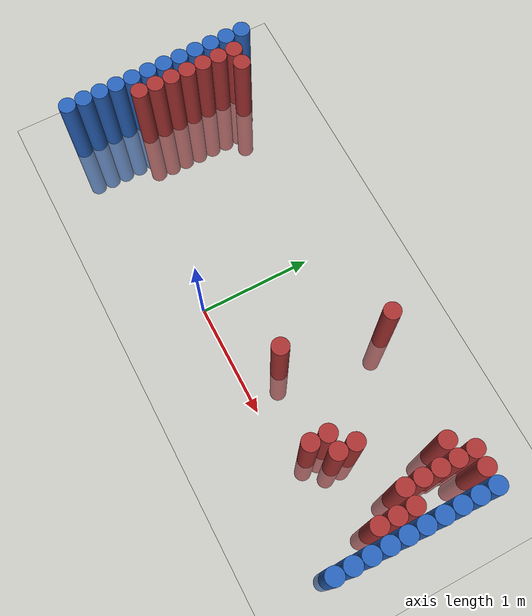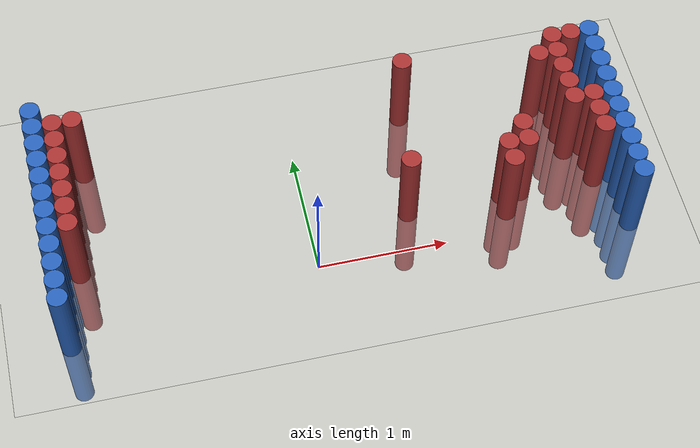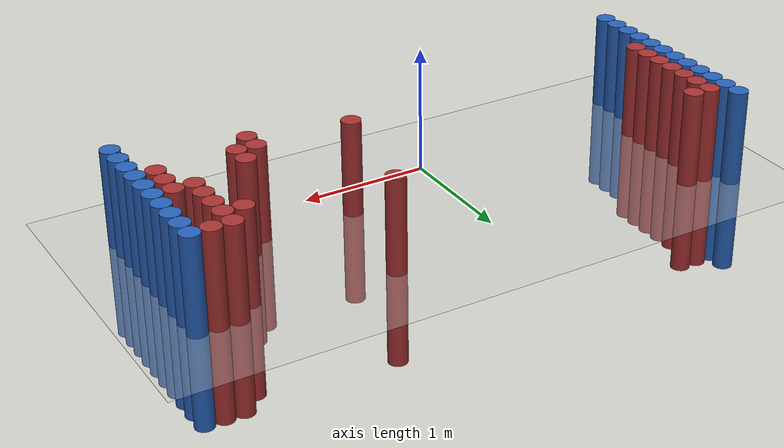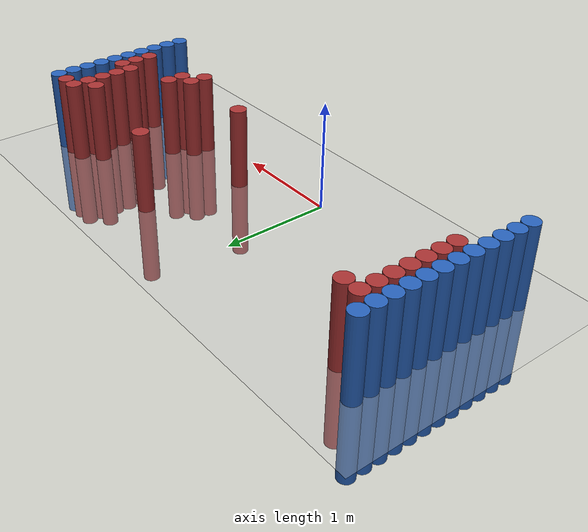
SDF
<sdf version="1.6">
 <world name="default">
  <model name="ground_plane">
   <static>1</static>
   <link name="link">
    <collision name="collision">
     <geometry><plane><normal>0 0 1</normal><size>100 100</size></plane></geometry>
     <surface><friction><ode><mu>100</mu><mu2>50</mu2></ode></friction></surface>
    </collision>
    <visual name="visual">
     <cast_shadows>0</cast_shadows>
     <geometry><plane><normal>0 0 1</normal><size>100 100</size></plane></geometry>
     <material>
      <script><uri>file://media/materials/scripts/gazebo.material</uri><name>Gazebo/Grey</name></script>
     </material>
    </visual>
   </link>
  </model>
  <model name="unit_cylinder_91">
   <static>1</static>
   <pose>-1.925000 -0.275000 0.000000 0.000000 0.000000 0.000000</pose>
   <link name="link">
    <inertial>
     <mass>1</mass>
     <inertia><ixx>0.145833</ixx><ixy>0</ixy><ixz>0</ixz><iyy>0.145833</iyy><iyz>0</iyz><izz>0.125</izz></inertia>
    </inertial>
    <collision name="collision">
     <geometry><cylinder><radius>0.075000</radius><length>1.5</length></cylinder></geometry>
    </collision>
    <visual name="visual">
     <geometry><cylinder><radius>0.075000</radius><length>1.5</length></cylinder></geometry>
     <material>
      <ambient>0.152000 0.379000 0.720000 1</ambient>
      <diffuse>0.152000 0.379000 0.720000 1</diffuse>
     </material>
     <material>
      <script><name>Gazebo/Grey</name><uri>file://media/materials/scripts/gazebo.material</uri></script>
     </material>
    </visual>
   </link>
  </model>
  <model name="unit_cylinder_92">
   <static>1</static>
   <pose>2.425000 -0.125000 0.000000 0.000000 0.000000 0.000000</pose>
   <link name="link">
    <inertial>
     <mass>1</mass>
     <inertia><ixx>0.145833</ixx><ixy>0</ixy><ixz>0</ixz><iyy>0.145833</iyy><iyz>0</iyz><izz>0.125</izz></inertia>
    </inertial>
    <collision name="collision">
     <geometry><cylinder><radius>0.075000</radius><length>1.5</length></cylinder></geometry>
    </collision>
    <visual name="visual">
     <geometry><cylinder><radius>0.075000</radius><length>1.5</length></cylinder></geometry>
     <material>
      <ambient>0.152000 0.379000 0.720000 1</ambient>
      <diffuse>0.152000 0.379000 0.720000 1</diffuse>
     </material>
     <material>
      <script><name>Gazebo/Grey</name><uri>file://media/materials/scripts/gazebo.material</uri></script>
     </material>
    </visual>
   </link>
  </model>
  <model name="unit_cylinder_93">
   <static>1</static>
   <pose>-1.925000 -0.125000 0.000000 0.000000 0.000000 0.000000</pose>
   <link name="link">
    <inertial>
     <mass>1</mass>
     <inertia><ixx>0.145833</ixx><ixy>0</ixy><ixz>0</ixz><iyy>0.145833</iyy><iyz>0</iyz><izz>0.125</izz></inertia>
    </inertial>
    <collision name="collision">
     <geometry><cylinder><radius>0.075000</radius><length>1.5</length></cylinder></geometry>
    </collision>
    <visual name="visual">
     <geometry><cylinder><radius>0.075000</radius><length>1.5</length></cylinder></geometry>
     <material>
      <ambient>0.152000 0.379000 0.720000 1</ambient>
      <diffuse>0.152000 0.379000 0.720000 1</diffuse>
     </material>
     <material>
      <script><name>Gazebo/Grey</name><uri>file://media/materials/scripts/gazebo.material</uri></script>
     </material>
    </visual>
   </link>
  </model>
  <model name="unit_cylinder_94">
   <static>1</static>
   <pose>2.425000 0.025000 0.000000 0.000000 0.000000 0.000000</pose>
   <link name="link">
    <inertial>
     <mass>1</mass>
     <inertia><ixx>0.145833</ixx><ixy>0</ixy><ixz>0</ixz><iyy>0.145833</iyy><iyz>0</iyz><izz>0.125</izz></inertia>
    </inertial>
    <collision name="collision">
     <geometry><cylinder><radius>0.075000</radius><length>1.5</length></cylinder></geometry>
    </collision>
    <visual name="visual">
     <geometry><cylinder><radius>0.075000</radius><length>1.5</length></cylinder></geometry>
     <material>
      <ambient>0.152000 0.379000 0.720000 1</ambient>
      <diffuse>0.152000 0.379000 0.720000 1</diffuse>
     </material>
     <material>
      <script><name>Gazebo/Grey</name><uri>file://media/materials/scripts/gazebo.material</uri></script>
     </material>
    </visual>
   </link>
  </model>
  <model name="unit_cylinder_95">
   <static>1</static>
   <pose>-1.925000 0.025000 0.000000 0.000000 0.000000 0.000000</pose>
   <link name="link">
    <inertial>
     <mass>1</mass>
     <inertia><ixx>0.145833</ixx><ixy>0</ixy><ixz>0</ixz><iyy>0.145833</iyy><iyz>0</iyz><izz>0.125</izz></inertia>
    </inertial>
    <collision name="collision">
     <geometry><cylinder><radius>0.075000</radius><length>1.5</length></cylinder></geometry>
    </collision>
    <visual name="visual">
     <geometry><cylinder><radius>0.075000</radius><length>1.5</length></cylinder></geometry>
     <material>
      <ambient>0.152000 0.379000 0.720000 1</ambient>
      <diffuse>0.152000 0.379000 0.720000 1</diffuse>
     </material>
     <material>
      <script><name>Gazebo/Grey</name><uri>file://media/materials/scripts/gazebo.material</uri></script>
     </material>
    </visual>
   </link>
  </model>
  <model name="unit_cylinder_96">
   <static>1</static>
   <pose>-1.925000 0.175000 0.000000 0.000000 0.000000 0.000000</pose>
   <link name="link">
    <inertial>
     <mass>1</mass>
     <inertia><ixx>0.145833</ixx><ixy>0</ixy><ixz>0</ixz><iyy>0.145833</iyy><iyz>0</iyz><izz>0.125</izz></inertia>
    </inertial>
    <collision name="collision">
     <geometry><cylinder><radius>0.075000</radius><length>1.5</length></cylinder></geometry>
    </collision>
    <visual name="visual">
     <geometry><cylinder><radius>0.075000</radius><length>1.5</length></cylinder></geometry>
     <material>
      <ambient>0.152000 0.379000 0.720000 1</ambient>
      <diffuse>0.152000 0.379000 0.720000 1</diffuse>
     </material>
     <material>
      <script><name>Gazebo/Grey</name><uri>file://media/materials/scripts/gazebo.material</uri></script>
     </material>
    </visual>
   </link>
  </model>
  <model name="unit_cylinder_97">
   <static>1</static>
   <pose>-1.925000 0.325000 0.000000 0.000000 0.000000 0.000000</pose>
   <link name="link">
    <inertial>
     <mass>1</mass>
     <inertia><ixx>0.145833</ixx><ixy>0</ixy><ixz>0</ixz><iyy>0.145833</iyy><iyz>0</iyz><izz>0.125</izz></inertia>
    </inertial>
    <collision name="collision">
     <geometry><cylinder><radius>0.075000</radius><length>1.5</length></cylinder></geometry>
    </collision>
    <visual name="visual">
     <geometry><cylinder><radius>0.075000</radius><length>1.5</length></cylinder></geometry>
     <material>
      <ambient>0.152000 0.379000 0.720000 1</ambient>
      <diffuse>0.152000 0.379000 0.720000 1</diffuse>
     </material>
     <material>
      <script><name>Gazebo/Grey</name><uri>file://media/materials/scripts/gazebo.material</uri></script>
     </material>
    </visual>
   </link>
  </model>
  <model name="unit_cylinder_98">
   <static>1</static>
   <pose>-1.925000 0.475000 0.000000 0.000000 0.000000 0.000000</pose>
   <link name="link">
    <inertial>
     <mass>1</mass>
     <inertia><ixx>0.145833</ixx><ixy>0</ixy><ixz>0</ixz><iyy>0.145833</iyy><iyz>0</iyz><izz>0.125</izz></inertia>
    </inertial>
    <collision name="collision">
     <geometry><cylinder><radius>0.075000</radius><length>1.5</length></cylinder></geometry>
    </collision>
    <visual name="visual">
     <geometry><cylinder><radius>0.075000</radius><length>1.5</length></cylinder></geometry>
     <material>
      <ambient>0.152000 0.379000 0.720000 1</ambient>
      <diffuse>0.152000 0.379000 0.720000 1</diffuse>
     </material>
     <material>
      <script><name>Gazebo/Grey</name><uri>file://media/materials/scripts/gazebo.material</uri></script>
     </material>
    </visual>
   </link>
  </model>
  <model name="unit_cylinder_99">
   <static>1</static>
   <pose>-1.925000 0.625000 0.000000 0.000000 0.000000 0.000000</pose>
   <link name="link">
    <inertial>
     <mass>1</mass>
     <inertia><ixx>0.145833</ixx><ixy>0</ixy><ixz>0</ixz><iyy>0.145833</iyy><iyz>0</iyz><izz>0.125</izz></inertia>
    </inertial>
    <collision name="collision">
     <geometry><cylinder><radius>0.075000</radius><length>1.5</length></cylinder></geometry>
    </collision>
    <visual name="visual">
     <geometry><cylinder><radius>0.075000</radius><length>1.5</length></cylinder></geometry>
     <material>
      <ambient>0.152000 0.379000 0.720000 1</ambient>
      <diffuse>0.152000 0.379000 0.720000 1</diffuse>
     </material>
     <material>
      <script><name>Gazebo/Grey</name><uri>file://media/materials/scripts/gazebo.material</uri></script>
     </material>
    </visual>
   </link>
  </model>
  <model name="unit_cylinder_100">
   <static>1</static>
   <pose>-1.925000 0.775000 0.000000 0.000000 0.000000 0.000000</pose>
   <link name="link">
    <inertial>
     <mass>1</mass>
     <inertia><ixx>0.145833</ixx><ixy>0</ixy><ixz>0</ixz><iyy>0.145833</iyy><iyz>0</iyz><izz>0.125</izz></inertia>
    </inertial>
    <collision name="collision">
     <geometry><cylinder><radius>0.075000</radius><length>1.5</length></cylinder></geometry>
    </collision>
    <visual name="visual">
     <geometry><cylinder><radius>0.075000</radius><length>1.5</length></cylinder></geometry>
     <material>
      <ambient>0.152000 0.379000 0.720000 1</ambient>
      <diffuse>0.152000 0.379000 0.720000 1</diffuse>
     </material>
     <material>
      <script><name>Gazebo/Grey</name><uri>file://media/materials/scripts/gazebo.material</uri></script>
     </material>
    </visual>
   </link>
  </model>
  <model name="unit_cylinder_101">
   <static>1</static>
   <pose>-1.925000 0.925000 0.000000 0.000000 0.000000 0.000000</pose>
   <link name="link">
    <inertial>
     <mass>1</mass>
     <inertia><ixx>0.145833</ixx><ixy>0</ixy><ixz>0</ixz><iyy>0.145833</iyy><iyz>0</iyz><izz>0.125</izz></inertia>
    </inertial>
    <collision name="collision">
     <geometry><cylinder><radius>0.075000</radius><length>1.5</length></cylinder></geometry>
    </collision>
    <visual name="visual">
     <geometry><cylinder><radius>0.075000</radius><length>1.5</length></cylinder></geometry>
     <material>
      <ambient>0.152000 0.379000 0.720000 1</ambient>
      <diffuse>0.152000 0.379000 0.720000 1</diffuse>
     </material>
     <material>
      <script><name>Gazebo/Grey</name><uri>file://media/materials/scripts/gazebo.material</uri></script>
     </material>
    </visual>
   </link>
  </model>
  <model name="unit_cylinder_102">
   <static>1</static>
   <pose>-1.925000 1.075000 0.000000 0.000000 0.000000 0.000000</pose>
   <link name="link">
    <inertial>
     <mass>1</mass>
     <inertia><ixx>0.145833</ixx><ixy>0</ixy><ixz>0</ixz><iyy>0.145833</iyy><iyz>0</iyz><izz>0.125</izz></inertia>
    </inertial>
    <collision name="collision">
     <geometry><cylinder><radius>0.075000</radius><length>1.5</length></cylinder></geometry>
    </collision>
    <visual name="visual">
     <geometry><cylinder><radius>0.075000</radius><length>1.5</length></cylinder></geometry>
     <material>
      <ambient>0.152000 0.379000 0.720000 1</ambient>
      <diffuse>0.152000 0.379000 0.720000 1</diffuse>
     </material>
     <material>
      <script><name>Gazebo/Grey</name><uri>file://media/materials/scripts/gazebo.material</uri></script>
     </material>
    </visual>
   </link>
  </model>
  <model name="unit_cylinder_103">
   <static>1</static>
   <pose>-1.925000 1.225000 0.000000 0.000000 0.000000 0.000000</pose>
   <link name="link">
    <inertial>
     <mass>1</mass>
     <inertia><ixx>0.145833</ixx><ixy>0</ixy><ixz>0</ixz><iyy>0.145833</iyy><iyz>0</iyz><izz>0.125</izz></inertia>
    </inertial>
    <collision name="collision">
     <geometry><cylinder><radius>0.075000</radius><length>1.5</length></cylinder></geometry>
    </collision>
    <visual name="visual">
     <geometry><cylinder><radius>0.075000</radius><length>1.5</length></cylinder></geometry>
     <material>
      <ambient>0.152000 0.379000 0.720000 1</ambient>
      <diffuse>0.152000 0.379000 0.720000 1</diffuse>
     </material>
     <material>
      <script><name>Gazebo/Grey</name><uri>file://media/materials/scripts/gazebo.material</uri></script>
     </material>
    </visual>
   </link>
  </model>
  <model name="unit_cylinder_104">
   <static>1</static>
   <pose>-1.925000 1.375000 0.000000 0.000000 0.000000 0.000000</pose>
   <link name="link">
    <inertial>
     <mass>1</mass>
     <inertia><ixx>0.145833</ixx><ixy>0</ixy><ixz>0</ixz><iyy>0.145833</iyy><iyz>0</iyz><izz>0.125</izz></inertia>
    </inertial>
    <collision name="collision">
     <geometry><cylinder><radius>0.075000</radius><length>1.5</length></cylinder></geometry>
    </collision>
    <visual name="visual">
     <geometry><cylinder><radius>0.075000</radius><length>1.5</length></cylinder></geometry>
     <material>
      <ambient>0.152000 0.379000 0.720000 1</ambient>
      <diffuse>0.152000 0.379000 0.720000 1</diffuse>
     </material>
     <material>
      <script><name>Gazebo/Grey</name><uri>file://media/materials/scripts/gazebo.material</uri></script>
     </material>
    </visual>
   </link>
  </model>
  <model name="unit_cylinder_126">
   <static>1</static>
   <pose>-1.775000 0.325000 0.000000 0.000000 0.000000 0.000000</pose>
   <link name="link">
    <inertial>
     <mass>1</mass>
     <inertia><ixx>0.145833</ixx><ixy>0</ixy><ixz>0</ixz><iyy>0.145833</iyy><iyz>0</iyz><izz>0.125</izz></inertia>
    </inertial>
    <collision name="collision">
     <geometry><cylinder><radius>0.075000</radius><length>1.5</length></cylinder></geometry>
    </collision>
    <visual name="visual">
     <geometry><cylinder><radius>0.075000</radius><length>1.5</length></cylinder></geometry>
     <material>
      <ambient>0.648000 0.192000 0.192000 1</ambient>
      <diffuse>0.648000 0.192000 0.192000 1</diffuse>
     </material>
     <material>
      <script><name>Gazebo/Grey</name><uri>file://media/materials/scripts/gazebo.material</uri></script>
     </material>
    </visual>
   </link>
  </model>
  <model name="unit_cylinder_127">
   <static>1</static>
   <pose>-1.775000 0.475000 0.000000 0.000000 0.000000 0.000000</pose>
   <link name="link">
    <inertial>
     <mass>1</mass>
     <inertia><ixx>0.145833</ixx><ixy>0</ixy><ixz>0</ixz><iyy>0.145833</iyy><iyz>0</iyz><izz>0.125</izz></inertia>
    </inertial>
    <collision name="collision">
     <geometry><cylinder><radius>0.075000</radius><length>1.5</length></cylinder></geometry>
    </collision>
    <visual name="visual">
     <geometry><cylinder><radius>0.075000</radius><length>1.5</length></cylinder></geometry>
     <material>
      <ambient>0.648000 0.192000 0.192000 1</ambient>
      <diffuse>0.648000 0.192000 0.192000 1</diffuse>
     </material>
     <material>
      <script><name>Gazebo/Grey</name><uri>file://media/materials/scripts/gazebo.material</uri></script>
     </material>
    </visual>
   </link>
  </model>
  <model name="unit_cylinder_128">
   <static>1</static>
   <pose>-1.775000 0.625000 0.000000 0.000000 0.000000 0.000000</pose>
   <link name="link">
    <inertial>
     <mass>1</mass>
     <inertia><ixx>0.145833</ixx><ixy>0</ixy><ixz>0</ixz><iyy>0.145833</iyy><iyz>0</iyz><izz>0.125</izz></inertia>
    </inertial>
    <collision name="collision">
     <geometry><cylinder><radius>0.075000</radius><length>1.5</length></cylinder></geometry>
    </collision>
    <visual name="visual">
     <geometry><cylinder><radius>0.075000</radius><length>1.5</length></cylinder></geometry>
     <material>
      <ambient>0.648000 0.192000 0.192000 1</ambient>
      <diffuse>0.648000 0.192000 0.192000 1</diffuse>
     </material>
     <material>
      <script><name>Gazebo/Grey</name><uri>file://media/materials/scripts/gazebo.material</uri></script>
     </material>
    </visual>
   </link>
  </model>
  <model name="unit_cylinder_129">
   <static>1</static>
   <pose>-1.775000 0.775000 0.000000 0.000000 0.000000 0.000000</pose>
   <link name="link">
    <inertial>
     <mass>1</mass>
     <inertia><ixx>0.145833</ixx><ixy>0</ixy><ixz>0</ixz><iyy>0.145833</iyy><iyz>0</iyz><izz>0.125</izz></inertia>
    </inertial>
    <collision name="collision">
     <geometry><cylinder><radius>0.075000</radius><length>1.5</length></cylinder></geometry>
    </collision>
    <visual name="visual">
     <geometry><cylinder><radius>0.075000</radius><length>1.5</length></cylinder></geometry>
     <material>
      <ambient>0.648000 0.192000 0.192000 1</ambient>
      <diffuse>0.648000 0.192000 0.192000 1</diffuse>
     </material>
     <material>
      <script><name>Gazebo/Grey</name><uri>file://media/materials/scripts/gazebo.material</uri></script>
     </material>
    </visual>
   </link>
  </model>
  <model name="unit_cylinder_130">
   <static>1</static>
   <pose>-1.775000 0.925000 0.000000 0.000000 0.000000 0.000000</pose>
   <link name="link">
    <inertial>
     <mass>1</mass>
     <inertia><ixx>0.145833</ixx><ixy>0</ixy><ixz>0</ixz><iyy>0.145833</iyy><iyz>0</iyz><izz>0.125</izz></inertia>
    </inertial>
    <collision name="collision">
     <geometry><cylinder><radius>0.075000</radius><length>1.5</length></cylinder></geometry>
    </collision>
    <visual name="visual">
     <geometry><cylinder><radius>0.075000</radius><length>1.5</length></cylinder></geometry>
     <material>
      <ambient>0.648000 0.192000 0.192000 1</ambient>
      <diffuse>0.648000 0.192000 0.192000 1</diffuse>
     </material>
     <material>
      <script><name>Gazebo/Grey</name><uri>file://media/materials/scripts/gazebo.material</uri></script>
     </material>
    </visual>
   </link>
  </model>
  <model name="unit_cylinder_131">
   <static>1</static>
   <pose>-1.775000 1.075000 0.000000 0.000000 0.000000 0.000000</pose>
   <link name="link">
    <inertial>
     <mass>1</mass>
     <inertia><ixx>0.145833</ixx><ixy>0</ixy><ixz>0</ixz><iyy>0.145833</iyy><iyz>0</iyz><izz>0.125</izz></inertia>
    </inertial>
    <collision name="collision">
     <geometry><cylinder><radius>0.075000</radius><length>1.5</length></cylinder></geometry>
    </collision>
    <visual name="visual">
     <geometry><cylinder><radius>0.075000</radius><length>1.5</length></cylinder></geometry>
     <material>
      <ambient>0.648000 0.192000 0.192000 1</ambient>
      <diffuse>0.648000 0.192000 0.192000 1</diffuse>
     </material>
     <material>
      <script><name>Gazebo/Grey</name><uri>file://media/materials/scripts/gazebo.material</uri></script>
     </material>
    </visual>
   </link>
  </model>
  <model name="unit_cylinder_132">
   <static>1</static>
   <pose>-1.775000 1.225000 0.000000 0.000000 0.000000 0.000000</pose>
   <link name="link">
    <inertial>
     <mass>1</mass>
     <inertia><ixx>0.145833</ixx><ixy>0</ixy><ixz>0</ixz><iyy>0.145833</iyy><iyz>0</iyz><izz>0.125</izz></inertia>
    </inertial>
    <collision name="collision">
     <geometry><cylinder><radius>0.075000</radius><length>1.5</length></cylinder></geometry>
    </collision>
    <visual name="visual">
     <geometry><cylinder><radius>0.075000</radius><length>1.5</length></cylinder></geometry>
     <material>
      <ambient>0.648000 0.192000 0.192000 1</ambient>
      <diffuse>0.648000 0.192000 0.192000 1</diffuse>
     </material>
     <material>
      <script><name>Gazebo/Grey</name><uri>file://media/materials/scripts/gazebo.material</uri></script>
     </material>
    </visual>
   </link>
  </model>
  <model name="unit_cylinder_147">
   <static>1</static>
   <pose>-1.625000 1.225000 0.000000 0.000000 0.000000 0.000000</pose>
   <link name="link">
    <inertial>
     <mass>1</mass>
     <inertia><ixx>0.145833</ixx><ixy>0</ixy><ixz>0</ixz><iyy>0.145833</iyy><iyz>0</iyz><izz>0.125</izz></inertia>
    </inertial>
    <collision name="collision">
     <geometry><cylinder><radius>0.075000</radius><length>1.5</length></cylinder></geometry>
    </collision>
    <visual name="visual">
     <geometry><cylinder><radius>0.075000</radius><length>1.5</length></cylinder></geometry>
     <material>
      <ambient>0.648000 0.192000 0.192000 1</ambient>
      <diffuse>0.648000 0.192000 0.192000 1</diffuse>
     </material>
     <material>
      <script><name>Gazebo/Grey</name><uri>file://media/materials/scripts/gazebo.material</uri></script>
     </material>
    </visual>
   </link>
  </model>
  <model name="unit_cylinder_184">
   <static>1</static>
   <pose>0.775000 0.325000 0.000000 0.000000 0.000000 0.000000</pose>
   <link name="link">
    <inertial>
     <mass>1</mass>
     <inertia><ixx>0.145833</ixx><ixy>0</ixy><ixz>0</ixz><iyy>0.145833</iyy><iyz>0</iyz><izz>0.125</izz></inertia>
    </inertial>
    <collision name="collision">
     <geometry><cylinder><radius>0.075000</radius><length>1.5</length></cylinder></geometry>
    </collision>
    <visual name="visual">
     <geometry><cylinder><radius>0.075000</radius><length>1.5</length></cylinder></geometry>
     <material>
      <ambient>0.648000 0.192000 0.192000 1</ambient>
      <diffuse>0.648000 0.192000 0.192000 1</diffuse>
     </material>
     <material>
      <script><name>Gazebo/Grey</name><uri>file://media/materials/scripts/gazebo.material</uri></script>
     </material>
    </visual>
   </link>
  </model>
  <model name="unit_cylinder_187">
   <static>1</static>
   <pose>0.925000 1.225000 0.000000 0.000000 0.000000 0.000000</pose>
   <link name="link">
    <inertial>
     <mass>1</mass>
     <inertia><ixx>0.145833</ixx><ixy>0</ixy><ixz>0</ixz><iyy>0.145833</iyy><iyz>0</iyz><izz>0.125</izz></inertia>
    </inertial>
    <collision name="collision">
     <geometry><cylinder><radius>0.075000</radius><length>1.5</length></cylinder></geometry>
    </collision>
    <visual name="visual">
     <geometry><cylinder><radius>0.075000</radius><length>1.5</length></cylinder></geometry>
     <material>
      <ambient>0.648000 0.192000 0.192000 1</ambient>
      <diffuse>0.648000 0.192000 0.192000 1</diffuse>
     </material>
     <material>
      <script><name>Gazebo/Grey</name><uri>file://media/materials/scripts/gazebo.material</uri></script>
     </material>
    </visual>
   </link>
  </model>
  <model name="unit_cylinder_205">
   <static>1</static>
   <pose>1.525000 0.175000 0.000000 0.000000 0.000000 0.000000</pose>
   <link name="link">
    <inertial>
     <mass>1</mass>
     <inertia><ixx>0.145833</ixx><ixy>0</ixy><ixz>0</ixz><iyy>0.145833</iyy><iyz>0</iyz><izz>0.125</izz></inertia>
    </inertial>
    <collision name="collision">
     <geometry><cylinder><radius>0.075000</radius><length>1.5</length></cylinder></geometry>
    </collision>
    <visual name="visual">
     <geometry><cylinder><radius>0.075000</radius><length>1.5</length></cylinder></geometry>
     <material>
      <ambient>0.648000 0.192000 0.192000 1</ambient>
      <diffuse>0.648000 0.192000 0.192000 1</diffuse>
     </material>
     <material>
      <script><name>Gazebo/Grey</name><uri>file://media/materials/scripts/gazebo.material</uri></script>
     </material>
    </visual>
   </link>
  </model>
  <model name="unit_cylinder_206">
   <static>1</static>
   <pose>1.525000 0.325000 0.000000 0.000000 0.000000 0.000000</pose>
   <link name="link">
    <inertial>
     <mass>1</mass>
     <inertia><ixx>0.145833</ixx><ixy>0</ixy><ixz>0</ixz><iyy>0.145833</iyy><iyz>0</iyz><izz>0.125</izz></inertia>
    </inertial>
    <collision name="collision">
     <geometry><cylinder><radius>0.075000</radius><length>1.5</length></cylinder></geometry>
    </collision>
    <visual name="visual">
     <geometry><cylinder><radius>0.075000</radius><length>1.5</length></cylinder></geometry>
     <material>
      <ambient>0.648000 0.192000 0.192000 1</ambient>
      <diffuse>0.648000 0.192000 0.192000 1</diffuse>
     </material>
     <material>
      <script><name>Gazebo/Grey</name><uri>file://media/materials/scripts/gazebo.material</uri></script>
     </material>
    </visual>
   </link>
  </model>
  <model name="unit_cylinder_210">
   <static>1</static>
   <pose>1.675000 0.325000 0.000000 0.000000 0.000000 0.000000</pose>
   <link name="link">
    <inertial>
     <mass>1</mass>
     <inertia><ixx>0.145833</ixx><ixy>0</ixy><ixz>0</ixz><iyy>0.145833</iyy><iyz>0</iyz><izz>0.125</izz></inertia>
    </inertial>
    <collision name="collision">
     <geometry><cylinder><radius>0.075000</radius><length>1.5</length></cylinder></geometry>
    </collision>
    <visual name="visual">
     <geometry><cylinder><radius>0.075000</radius><length>1.5</length></cylinder></geometry>
     <material>
      <ambient>0.648000 0.192000 0.192000 1</ambient>
      <diffuse>0.648000 0.192000 0.192000 1</diffuse>
     </material>
     <material>
      <script><name>Gazebo/Grey</name><uri>file://media/materials/scripts/gazebo.material</uri></script>
     </material>
    </visual>
   </link>
  </model>
  <model name="unit_cylinder_211">
   <static>1</static>
   <pose>1.675000 0.475000 0.000000 0.000000 0.000000 0.000000</pose>
   <link name="link">
    <inertial>
     <mass>1</mass>
     <inertia><ixx>0.145833</ixx><ixy>0</ixy><ixz>0</ixz><iyy>0.145833</iyy><iyz>0</iyz><izz>0.125</izz></inertia>
    </inertial>
    <collision name="collision">
     <geometry><cylinder><radius>0.075000</radius><length>1.5</length></cylinder></geometry>
    </collision>
    <visual name="visual">
     <geometry><cylinder><radius>0.075000</radius><length>1.5</length></cylinder></geometry>
     <material>
      <ambient>0.648000 0.192000 0.192000 1</ambient>
      <diffuse>0.648000 0.192000 0.192000 1</diffuse>
     </material>
     <material>
      <script><name>Gazebo/Grey</name><uri>file://media/materials/scripts/gazebo.material</uri></script>
     </material>
    </visual>
   </link>
  </model>
  <model name="unit_cylinder_215">
   <static>1</static>
   <pose>1.975000 1.075000 0.000000 0.000000 0.000000 0.000000</pose>
   <link name="link">
    <inertial>
     <mass>1</mass>
     <inertia><ixx>0.145833</ixx><ixy>0</ixy><ixz>0</ixz><iyy>0.145833</iyy><iyz>0</iyz><izz>0.125</izz></inertia>
    </inertial>
    <collision name="collision">
     <geometry><cylinder><radius>0.075000</radius><length>1.5</length></cylinder></geometry>
    </collision>
    <visual name="visual">
     <geometry><cylinder><radius>0.075000</radius><length>1.5</length></cylinder></geometry>
     <material>
      <ambient>0.648000 0.192000 0.192000 1</ambient>
      <diffuse>0.648000 0.192000 0.192000 1</diffuse>
     </material>
     <material>
      <script><name>Gazebo/Grey</name><uri>file://media/materials/scripts/gazebo.material</uri></script>
     </material>
    </visual>
   </link>
  </model>
  <model name="unit_cylinder_219">
   <static>1</static>
   <pose>2.125000 0.625000 0.000000 0.000000 0.000000 0.000000</pose>
   <link name="link">
    <inertial>
     <mass>1</mass>
     <inertia><ixx>0.145833</ixx><ixy>0</ixy><ixz>0</ixz><iyy>0.145833</iyy><iyz>0</iyz><izz>0.125</izz></inertia>
    </inertial>
    <collision name="collision">
     <geometry><cylinder><radius>0.075000</radius><length>1.5</length></cylinder></geometry>
    </collision>
    <visual name="visual">
     <geometry><cylinder><radius>0.075000</radius><length>1.5</length></cylinder></geometry>
     <material>
      <ambient>0.648000 0.192000 0.192000 1</ambient>
      <diffuse>0.648000 0.192000 0.192000 1</diffuse>
     </material>
     <material>
      <script><name>Gazebo/Grey</name><uri>file://media/materials/scripts/gazebo.material</uri></script>
     </material>
    </visual>
   </link>
  </model>
  <model name="unit_cylinder_220">
   <static>1</static>
   <pose>2.125000 0.775000 0.000000 0.000000 0.000000 0.000000</pose>
   <link name="link">
    <inertial>
     <mass>1</mass>
     <inertia><ixx>0.145833</ixx><ixy>0</ixy><ixz>0</ixz><iyy>0.145833</iyy><iyz>0</iyz><izz>0.125</izz></inertia>
    </inertial>
    <collision name="collision">
     <geometry><cylinder><radius>0.075000</radius><length>1.5</length></cylinder></geometry>
    </collision>
    <visual name="visual">
     <geometry><cylinder><radius>0.075000</radius><length>1.5</length></cylinder></geometry>
     <material>
      <ambient>0.648000 0.192000 0.192000 1</ambient>
      <diffuse>0.648000 0.192000 0.192000 1</diffuse>
     </material>
     <material>
      <script><name>Gazebo/Grey</name><uri>file://media/materials/scripts/gazebo.material</uri></script>
     </material>
    </visual>
   </link>
  </model>
  <model name="unit_cylinder_221">
   <static>1</static>
   <pose>2.125000 0.925000 0.000000 0.000000 0.000000 0.000000</pose>
   <link name="link">
    <inertial>
     <mass>1</mass>
     <inertia><ixx>0.145833</ixx><ixy>0</ixy><ixz>0</ixz><iyy>0.145833</iyy><iyz>0</iyz><izz>0.125</izz></inertia>
    </inertial>
    <collision name="collision">
     <geometry><cylinder><radius>0.075000</radius><length>1.5</length></cylinder></geometry>
    </collision>
    <visual name="visual">
     <geometry><cylinder><radius>0.075000</radius><length>1.5</length></cylinder></geometry>
     <material>
      <ambient>0.648000 0.192000 0.192000 1</ambient>
      <diffuse>0.648000 0.192000 0.192000 1</diffuse>
     </material>
     <material>
      <script><name>Gazebo/Grey</name><uri>file://media/materials/scripts/gazebo.material</uri></script>
     </material>
    </visual>
   </link>
  </model>
  <model name="unit_cylinder_222">
   <static>1</static>
   <pose>2.125000 1.075000 0.000000 0.000000 0.000000 0.000000</pose>
   <link name="link">
    <inertial>
     <mass>1</mass>
     <inertia><ixx>0.145833</ixx><ixy>0</ixy><ixz>0</ixz><iyy>0.145833</iyy><iyz>0</iyz><izz>0.125</izz></inertia>
    </inertial>
    <collision name="collision">
     <geometry><cylinder><radius>0.075000</radius><length>1.5</length></cylinder></geometry>
    </collision>
    <visual name="visual">
     <geometry><cylinder><radius>0.075000</radius><length>1.5</length></cylinder></geometry>
     <material>
      <ambient>0.648000 0.192000 0.192000 1</ambient>
      <diffuse>0.648000 0.192000 0.192000 1</diffuse>
     </material>
     <material>
      <script><name>Gazebo/Grey</name><uri>file://media/materials/scripts/gazebo.material</uri></script>
     </material>
    </visual>
   </link>
  </model>
  <model name="unit_cylinder_223">
   <static>1</static>
   <pose>2.125000 1.225000 0.000000 0.000000 0.000000 0.000000</pose>
   <link name="link">
    <inertial>
     <mass>1</mass>
     <inertia><ixx>0.145833</ixx><ixy>0</ixy><ixz>0</ixz><iyy>0.145833</iyy><iyz>0</iyz><izz>0.125</izz></inertia>
    </inertial>
    <collision name="collision">
     <geometry><cylinder><radius>0.075000</radius><length>1.5</length></cylinder></geometry>
    </collision>
    <visual name="visual">
     <geometry><cylinder><radius>0.075000</radius><length>1.5</length></cylinder></geometry>
     <material>
      <ambient>0.648000 0.192000 0.192000 1</ambient>
      <diffuse>0.648000 0.192000 0.192000 1</diffuse>
     </material>
     <material>
      <script><name>Gazebo/Grey</name><uri>file://media/materials/scripts/gazebo.material</uri></script>
     </material>
    </visual>
   </link>
  </model>
  <model name="unit_cylinder_228">
   <static>1</static>
   <pose>2.275000 0.325000 0.000000 0.000000 0.000000 0.000000</pose>
   <link name="link">
    <inertial>
     <mass>1</mass>
     <inertia><ixx>0.145833</ixx><ixy>0</ixy><ixz>0</ixz><iyy>0.145833</iyy><iyz>0</iyz><izz>0.125</izz></inertia>
    </inertial>
    <collision name="collision">
     <geometry><cylinder><radius>0.075000</radius><length>1.5</length></cylinder></geometry>
    </collision>
    <visual name="visual">
     <geometry><cylinder><radius>0.075000</radius><length>1.5</length></cylinder></geometry>
     <material>
      <ambient>0.648000 0.192000 0.192000 1</ambient>
      <diffuse>0.648000 0.192000 0.192000 1</diffuse>
     </material>
     <material>
      <script><name>Gazebo/Grey</name><uri>file://media/materials/scripts/gazebo.material</uri></script>
     </material>
    </visual>
   </link>
  </model>
  <model name="unit_cylinder_229">
   <static>1</static>
   <pose>2.275000 0.475000 0.000000 0.000000 0.000000 0.000000</pose>
   <link name="link">
    <inertial>
     <mass>1</mass>
     <inertia><ixx>0.145833</ixx><ixy>0</ixy><ixz>0</ixz><iyy>0.145833</iyy><iyz>0</iyz><izz>0.125</izz></inertia>
    </inertial>
    <collision name="collision">
     <geometry><cylinder><radius>0.075000</radius><length>1.5</length></cylinder></geometry>
    </collision>
    <visual name="visual">
     <geometry><cylinder><radius>0.075000</radius><length>1.5</length></cylinder></geometry>
     <material>
      <ambient>0.648000 0.192000 0.192000 1</ambient>
      <diffuse>0.648000 0.192000 0.192000 1</diffuse>
     </material>
     <material>
      <script><name>Gazebo/Grey</name><uri>file://media/materials/scripts/gazebo.material</uri></script>
     </material>
    </visual>
   </link>
  </model>
  <model name="unit_cylinder_230">
   <static>1</static>
   <pose>2.275000 0.625000 0.000000 0.000000 0.000000 0.000000</pose>
   <link name="link">
    <inertial>
     <mass>1</mass>
     <inertia><ixx>0.145833</ixx><ixy>0</ixy><ixz>0</ixz><iyy>0.145833</iyy><iyz>0</iyz><izz>0.125</izz></inertia>
    </inertial>
    <collision name="collision">
     <geometry><cylinder><radius>0.075000</radius><length>1.5</length></cylinder></geometry>
    </collision>
    <visual name="visual">
     <geometry><cylinder><radius>0.075000</radius><length>1.5</length></cylinder></geometry>
     <material>
      <ambient>0.648000 0.192000 0.192000 1</ambient>
      <diffuse>0.648000 0.192000 0.192000 1</diffuse>
     </material>
     <material>
      <script><name>Gazebo/Grey</name><uri>file://media/materials/scripts/gazebo.material</uri></script>
     </material>
    </visual>
   </link>
  </model>
  <model name="unit_cylinder_231">
   <static>1</static>
   <pose>2.275000 1.225000 0.000000 0.000000 0.000000 0.000000</pose>
   <link name="link">
    <inertial>
     <mass>1</mass>
     <inertia><ixx>0.145833</ixx><ixy>0</ixy><ixz>0</ixz><iyy>0.145833</iyy><iyz>0</iyz><izz>0.125</izz></inertia>
    </inertial>
    <collision name="collision">
     <geometry><cylinder><radius>0.075000</radius><length>1.5</length></cylinder></geometry>
    </collision>
    <visual name="visual">
     <geometry><cylinder><radius>0.075000</radius><length>1.5</length></cylinder></geometry>
     <material>
      <ambient>0.648000 0.192000 0.192000 1</ambient>
      <diffuse>0.648000 0.192000 0.192000 1</diffuse>
     </material>
     <material>
      <script><name>Gazebo/Grey</name><uri>file://media/materials/scripts/gazebo.material</uri></script>
     </material>
    </visual>
   </link>
  </model>
  <model name="unit_cylinder_244">
   <static>1</static>
   <pose>2.425000 0.175000 0.000000 0.000000 0.000000 0.000000</pose>
   <link name="link">
    <inertial>
     <mass>1</mass>
     <inertia><ixx>0.145833</ixx><ixy>0</ixy><ixz>0</ixz><iyy>0.145833</iyy><iyz>0</iyz><izz>0.125</izz></inertia>
    </inertial>
    <collision name="collision">
     <geometry><cylinder><radius>0.075000</radius><length>1.5</length></cylinder></geometry>
    </collision>
    <visual name="visual">
     <geometry><cylinder><radius>0.075000</radius><length>1.5</length></cylinder></geometry>
     <material>
      <ambient>0.152000 0.379000 0.720000 1</ambient>
      <diffuse>0.152000 0.379000 0.720000 1</diffuse>
     </material>
     <material>
      <script><name>Gazebo/Grey</name><uri>file://media/materials/scripts/gazebo.material</uri></script>
     </material>
    </visual>
   </link>
  </model>
  <model name="unit_cylinder_245">
   <static>1</static>
   <pose>2.425000 0.325000 0.000000 0.000000 0.000000 0.000000</pose>
   <link name="link">
    <inertial>
     <mass>1</mass>
     <inertia><ixx>0.145833</ixx><ixy>0</ixy><ixz>0</ixz><iyy>0.145833</iyy><iyz>0</iyz><izz>0.125</izz></inertia>
    </inertial>
    <collision name="collision">
     <geometry><cylinder><radius>0.075000</radius><length>1.5</length></cylinder></geometry>
    </collision>
    <visual name="visual">
     <geometry><cylinder><radius>0.075000</radius><length>1.5</length></cylinder></geometry>
     <material>
      <ambient>0.152000 0.379000 0.720000 1</ambient>
      <diffuse>0.152000 0.379000 0.720000 1</diffuse>
     </material>
     <material>
      <script><name>Gazebo/Grey</name><uri>file://media/materials/scripts/gazebo.material</uri></script>
     </material>
    </visual>
   </link>
  </model>
  <model name="unit_cylinder_246">
   <static>1</static>
   <pose>2.425000 0.475000 0.000000 0.000000 0.000000 0.000000</pose>
   <link name="link">
    <inertial>
     <mass>1</mass>
     <inertia><ixx>0.145833</ixx><ixy>0</ixy><ixz>0</ixz><iyy>0.145833</iyy><iyz>0</iyz><izz>0.125</izz></inertia>
    </inertial>
    <collision name="collision">
     <geometry><cylinder><radius>0.075000</radius><length>1.5</length></cylinder></geometry>
    </collision>
    <visual name="visual">
     <geometry><cylinder><radius>0.075000</radius><length>1.5</length></cylinder></geometry>
     <material>
      <ambient>0.152000 0.379000 0.720000 1</ambient>
      <diffuse>0.152000 0.379000 0.720000 1</diffuse>
     </material>
     <material>
      <script><name>Gazebo/Grey</name><uri>file://media/materials/scripts/gazebo.material</uri></script>
     </material>
    </visual>
   </link>
  </model>
  <model name="unit_cylinder_247">
   <static>1</static>
   <pose>2.425000 0.625000 0.000000 0.000000 0.000000 0.000000</pose>
   <link name="link">
    <inertial>
     <mass>1</mass>
     <inertia><ixx>0.145833</ixx><ixy>0</ixy><ixz>0</ixz><iyy>0.145833</iyy><iyz>0</iyz><izz>0.125</izz></inertia>
    </inertial>
    <collision name="collision">
     <geometry><cylinder><radius>0.075000</radius><length>1.5</length></cylinder></geometry>
    </collision>
    <visual name="visual">
     <geometry><cylinder><radius>0.075000</radius><length>1.5</length></cylinder></geometry>
     <material>
      <ambient>0.152000 0.379000 0.720000 1</ambient>
      <diffuse>0.152000 0.379000 0.720000 1</diffuse>
     </material>
     <material>
      <script><name>Gazebo/Grey</name><uri>file://media/materials/scripts/gazebo.material</uri></script>
     </material>
    </visual>
   </link>
  </model>
  <model name="unit_cylinder_248">
   <static>1</static>
   <pose>2.425000 0.775000 0.000000 0.000000 0.000000 0.000000</pose>
   <link name="link">
    <inertial>
     <mass>1</mass>
     <inertia><ixx>0.145833</ixx><ixy>0</ixy><ixz>0</ixz><iyy>0.145833</iyy><iyz>0</iyz><izz>0.125</izz></inertia>
    </inertial>
    <collision name="collision">
     <geometry><cylinder><radius>0.075000</radius><length>1.5</length></cylinder></geometry>
    </collision>
    <visual name="visual">
     <geometry><cylinder><radius>0.075000</radius><length>1.5</length></cylinder></geometry>
     <material>
      <ambient>0.152000 0.379000 0.720000 1</ambient>
      <diffuse>0.152000 0.379000 0.720000 1</diffuse>
     </material>
     <material>
      <script><name>Gazebo/Grey</name><uri>file://media/materials/scripts/gazebo.material</uri></script>
     </material>
    </visual>
   </link>
  </model>
  <model name="unit_cylinder_249">
   <static>1</static>
   <pose>2.425000 0.925000 0.000000 0.000000 0.000000 0.000000</pose>
   <link name="link">
    <inertial>
     <mass>1</mass>
     <inertia><ixx>0.145833</ixx><ixy>0</ixy><ixz>0</ixz><iyy>0.145833</iyy><iyz>0</iyz><izz>0.125</izz></inertia>
    </inertial>
    <collision name="collision">
     <geometry><cylinder><radius>0.075000</radius><length>1.5</length></cylinder></geometry>
    </collision>
    <visual name="visual">
     <geometry><cylinder><radius>0.075000</radius><length>1.5</length></cylinder></geometry>
     <material>
      <ambient>0.152000 0.379000 0.720000 1</ambient>
      <diffuse>0.152000 0.379000 0.720000 1</diffuse>
     </material>
     <material>
      <script><name>Gazebo/Grey</name><uri>file://media/materials/scripts/gazebo.material</uri></script>
     </material>
    </visual>
   </link>
  </model>
  <model name="unit_cylinder_250">
   <static>1</static>
   <pose>2.425000 1.075000 0.000000 0.000000 0.000000 0.000000</pose>
   <link name="link">
    <inertial>
     <mass>1</mass>
     <inertia><ixx>0.145833</ixx><ixy>0</ixy><ixz>0</ixz><iyy>0.145833</iyy><iyz>0</iyz><izz>0.125</izz></inertia>
    </inertial>
    <collision name="collision">
     <geometry><cylinder><radius>0.075000</radius><length>1.5</length></cylinder></geometry>
    </collision>
    <visual name="visual">
     <geometry><cylinder><radius>0.075000</radius><length>1.5</length></cylinder></geometry>
     <material>
      <ambient>0.152000 0.379000 0.720000 1</ambient>
      <diffuse>0.152000 0.379000 0.720000 1</diffuse>
     </material>
     <material>
      <script><name>Gazebo/Grey</name><uri>file://media/materials/scripts/gazebo.material</uri></script>
     </material>
    </visual>
   </link>
  </model>
  <model name="unit_cylinder_251">
   <static>1</static>
   <pose>2.425000 1.225000 0.000000 0.000000 0.000000 0.000000</pose>
   <link name="link">
    <inertial>
     <mass>1</mass>
     <inertia><ixx>0.145833</ixx><ixy>0</ixy><ixz>0</ixz><iyy>0.145833</iyy><iyz>0</iyz><izz>0.125</izz></inertia>
    </inertial>
    <collision name="collision">
     <geometry><cylinder><radius>0.075000</radius><length>1.5</length></cylinder></geometry>
    </collision>
    <visual name="visual">
     <geometry><cylinder><radius>0.075000</radius><length>1.5</length></cylinder></geometry>
     <material>
      <ambient>0.152000 0.379000 0.720000 1</ambient>
      <diffuse>0.152000 0.379000 0.720000 1</diffuse>
     </material>
     <material>
      <script><name>Gazebo/Grey</name><uri>file://media/materials/scripts/gazebo.material</uri></script>
     </material>
    </visual>
   </link>
  </model>
 </world>
</sdf>
